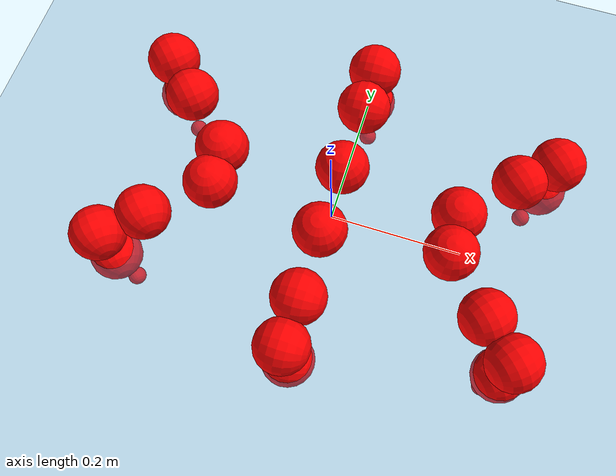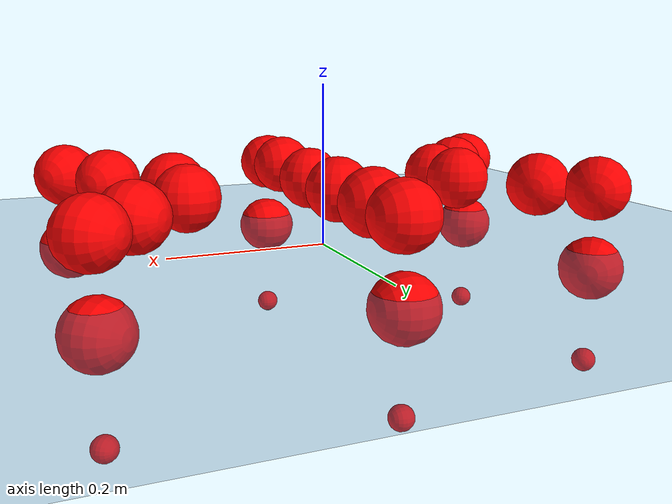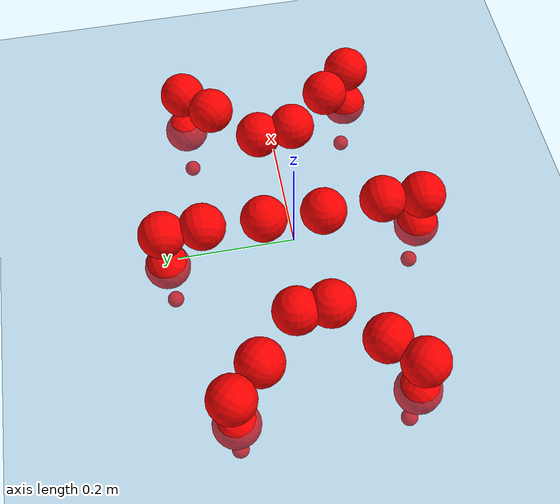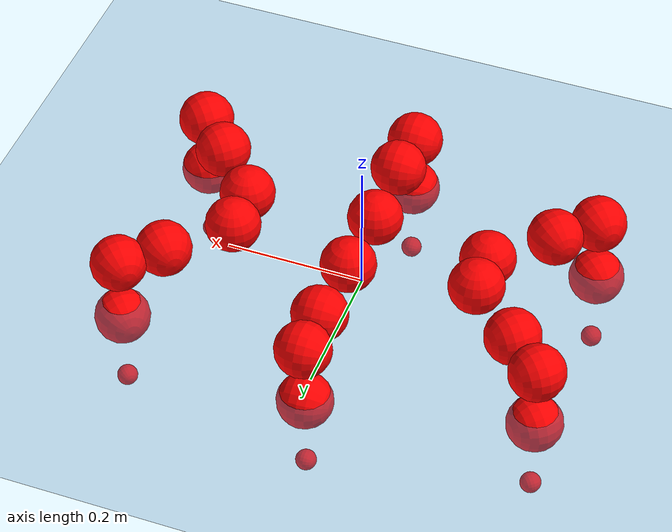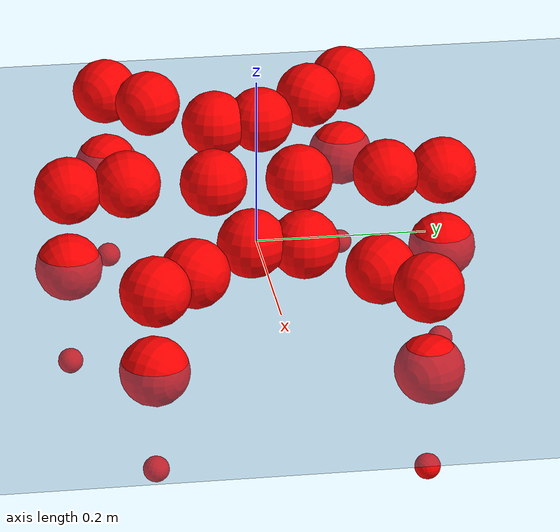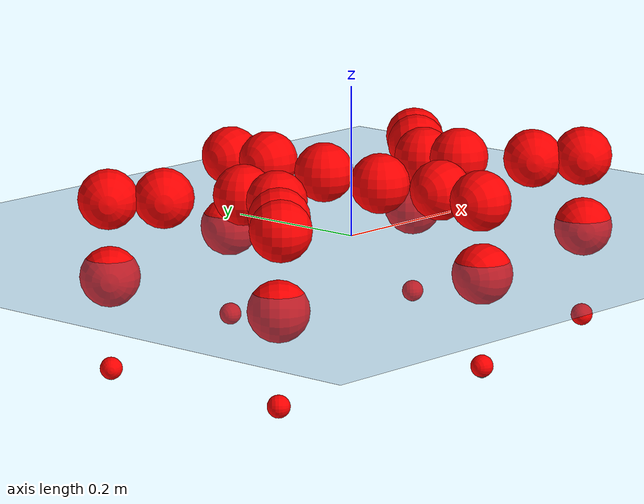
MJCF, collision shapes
<mujoco model="Golem">
  <compiler angle="radian" assetdir="assets" balanceinertia="true" inertiafromgeom="false"/>

  <option timestep="0.005" density="1.2" viscosity="2e-05"/>

  <size nkey="1"/>

  <visual>
    <quality shadowsize="8192"/>
    <map shadowclip="0.5"/>
  </visual>

  <default>
    <default class="/">
      <joint armature="0.01" damping="0.01" frictionloss="0.01"/>
      <geom contype="0" conaffinity="0" group="1" solref="-1000 -80"/>
      <site size="0.01 0.005 0.005" group="5"/>
      <general forcelimited="true" biastype="affine" gainprm="25" biasprm="0 -25 -0.5"/>
      <default class="visual">
        <geom type="mesh" group="2"/>
      </default>
      <default class="collision">
        <geom group="3"/>
      </default>
      <default class="foot">
        <geom size="0.01 0 0" condim="6" group="4" priority="1" solimp="0.015 1 0.01"/>
      </default>
      <default class="reward_collision_sphere">
        <geom group="5" rgba="1 0 0 1"/>
      </default>
    </default>
  </default>

  <asset>
    <texture type="skybox" colorspace="auto" name="//unnamed_texture_0" builtin="gradient" rgb1="0.95 0.95 0.95" rgb2="0.95 0.95 0.95" width="100" height="600"/>
    <texture type="2d" colorspace="auto" name="texplane" builtin="checker" rgb1="0.345 0.575 0.748" rgb2="0.345 0.575 0.748" markrgb="1 1 1" width="512" height="512"/>
    <material name="MatPlane" class="/" texture="texplane" texuniform="true" texrepeat="2 2" specular="0.9"/>
    <mesh name="body" class="/" file="body.stl" scale="0.001 0.001 0.001"/>
    <mesh name="coxa" class="/" file="coxa.stl" scale="0.001 0.001 0.001"/>
    <mesh name="femur" class="/" file="femur.stl" scale="0.001 0.001 0.001"/>
    <mesh name="tibia" class="/" file="tibia.stl" scale="0.001 0.001 0.001"/>
    <mesh name="tarsus" class="/" file="tarsus.stl" scale="0.001 0.001 0.001"/>
  </asset>

  <worldbody>
    <geom name="floor" class="/" size="100 100 0.125" type="plane" group="0" material="MatPlane"/>
    <light name="toplight_shadow" class="/" pos="0 0 5" dir="0.0990148 0.0990148 -0.990148" type="directional" ambient="0.04 0.04 0.04" diffuse="0.55 0.55 0.55" specular="0.12 0.12 0.12"/>
    <light name="toplight_fill" class="/" pos="0 0 5" dir="0.0990148 0.0990148 -0.990148" type="directional" castshadow="false" ambient="0.04 0.04 0.04" diffuse="0.3 0.3 0.3" specular="0.08 0.08 0.08"/>
    <body name="trunk" pos="0.00232082 -0.000250449 0.00224008" quat="1 0.000571998 -0.000743744 0.000216085">
      <inertial pos="0.000278724 -0.000672971 0.000256564" quat="0.999938 0.00957585 -0.00538664 0.00196062" mass="3.53259" diaginertia="0.0180832 0.0010105 0.0241008"/>
      <joint name="//unnamed_joint_0" type="free"/>
      <geom name="//unnamed_geom_1" class="/" pos="0 0 0.0761059" quat="1 0 0 0" type="mesh" rgba="0.9 0.9 0.9 1" mesh="body"/>
      <site name="imu" class="/" pos="0.136773 0.000953297 0.113395" size="0.00985781"/>
      <camera name="track" class="/" pos="0 -1.2737 0" quat="0.707107 0.707107 0 0" mode="trackcom"/>
      <camera name="ego_camera" class="/" pos="0.147074 0 0.118916" quat="-0.5 -0.5 0.5 0.5"/>
      <body name="coxa_RR" pos="-0.199171 -0.0505381 0.0763035" quat="0.382873 -0.00139032 0.00131037 -0.923799">
        <inertial pos="0.00317625 -0.000958431 0.00145528" quat="0.999981 -0.0013736 0.00604413 -0.000168798" mass="0.197589" diaginertia="0.018684 0.00106987 0.0248555"/>
        <joint name="coxa_joint_RR" class="/" pos="0 0 0" axis="0.00354165 -0.000214276 -0.999994" range="-3.1779 3.18642" armature="0.00869523" damping="0.00513394" frictionloss="0.00922853"/>
        <geom name="//unnamed_geom_2" class="/" type="mesh" rgba="0.2 0.2 0.2 1" mesh="coxa"/>
        <geom name="//unnamed_geom_3" class="reward_collision_sphere" size="0.0394313" pos="-0.0339402 0 0"/>
        <body name="femur_RR" pos="0.0694186 -0.000906864 -0.000340118" quat="0.499739 -0.500015 0.500075 0.50017">
          <inertial pos="-0.0010872 -0.00227798 -0.00214719" quat="1 9.31291e-06 9.23204e-06 -1.04416e-05" mass="0.192996" diaginertia="0.0184298 0.00104921 0.0247154"/>
          <joint name="femur_joint_RR" class="/" pos="0 0 0" axis="-0.00438883 0.00451973 -0.99998" range="-3.08709 3.15756" armature="0.00902121" damping="0.0148058" frictionloss="0.00857227"/>
          <geom name="//unnamed_geom_4" class="/" type="mesh" rgba="0.9 0.9 0.9 1" mesh="femur"/>
          <geom name="//unnamed_geom_5" class="reward_collision_sphere" size="0.0394313"/>
          <body name="tibia_RR" pos="0.000914081 -0.0672616 -0.000881766" quat="-3.81654e-05 1 -5.25446e-05 -0.000154131">
            <inertial pos="-0.00207364 -0.00145026 0.00221632" quat="0.999975 -0.00695595 -0.000180915 0.00122458" mass="0.184903" diaginertia="0.0183555 0.00101997 0.0239542"/>
            <joint name="tibia_joint_RR" class="/" pos="0 0 0" axis="-0.00429649 0.00143314 0.99999" range="-3.13967 3.13567" armature="0.00999581" damping="0.0173949" frictionloss="0.0107612"/>
            <geom name="//unnamed_geom_6" class="/" type="mesh" rgba="0.2 0.2 0.2 1" mesh="tibia"/>
            <geom name="//unnamed_geom_7" class="reward_collision_sphere" size="0.0394313"/>
            <body name="tarsus_RR" pos="0.101008 0.00188308 0.00277421" quat="1 0.000535355 0.000697139 0.000175527">
              <inertial pos="0.0708323 0.00305851 0.00235113" quat="0.510242 0.498697 0.497198 0.493709" mass="0.199856" diaginertia="0.0184281 0.00105457 0.0240669"/>
              <joint name="tarsus_joint_RR" class="/" pos="0 0 0" axis="0.00164353 0.00676844 0.999976" range="-3.13646 3.11225" armature="0.00945824" damping="0.0105641" frictionloss="0.00877425"/>
              <geom name="//unnamed_geom_8" class="/" type="mesh" rgba="0.9 0.9 0.9 1" mesh="tarsus"/>
              <geom name="foot_1" class="foot" size="0.009134" pos="0.12671 0 0" quat="0 -0.707107 0 0.707107"/>
              <geom name="//unnamed_geom_10" class="reward_collision_sphere" size="0.0394313"/>
              <geom name="//unnamed_geom_11" class="reward_collision_sphere" size="0.0147867" pos="0.121619 0 0"/>
              <site name="foot_1" class="foot" pos="0.12671 0 0" quat="0 -0.707107 0 0.707107" size="0.00985781"/>
            </body>
          </body>
        </body>
      </body>
      <body name="coxa_RM" pos="-0.00312156 -0.0839759 0.0755432" quat="0.706933 -0.000477866 -0.000117724 -0.70728">
        <inertial pos="-0.000646078 -0.00102952 0.00391962" quat="0.999913 -0.00401442 0.0105874 0.00671847" mass="0.19382" diaginertia="0.0185853 0.00106748 0.0244952"/>
        <joint name="coxa_joint_RM" class="/" pos="0 0 0" axis="0.00241398 -0.00220283 -0.999995" range="-3.13422 3.09722" armature="0.00894984" damping="0.0166501" frictionloss="0.010314"/>
        <geom name="//unnamed_geom_12" class="/" type="mesh" rgba="0.2 0.2 0.2 1" mesh="coxa"/>
        <geom name="//unnamed_geom_13" class="reward_collision_sphere" size="0.0394313" pos="-0.0339402 0 0"/>
        <body name="femur_RM" pos="0.0671992 0.00238816 0.00505008" quat="0.501471 -0.499253 0.500119 0.499153">
          <inertial pos="-0.00251223 -0.00095934 -0.000233923" quat="0.999916 -0.00474897 -0.00849607 -0.0086157" mass="0.197159" diaginertia="0.0180944 0.00101702 0.0236013"/>
          <joint name="femur_joint_RM" class="/" pos="0 0 0" axis="0.00131142 -0.0128497 -0.999917" range="-3.12124 3.1196" armature="0.00832527" damping="0.00368849" frictionloss="0.00975185"/>
          <geom name="//unnamed_geom_14" class="/" type="mesh" rgba="0.9 0.9 0.9 1" mesh="femur"/>
          <geom name="//unnamed_geom_15" class="reward_collision_sphere" size="0.0394313"/>
          <body name="tibia_RM" pos="0.00456561 -0.0684338 -0.000804419" quat="-0.000416214 1 -0.000118512 -5.66184e-05">
            <inertial pos="-0.00246119 0.000416269 0.0018724" quat="0.999993 0.000284574 0.00251176 0.00263137" mass="0.198508" diaginertia="0.019329 0.00105883 0.0235169"/>
            <joint name="tibia_joint_RM" class="/" pos="0 0 0" axis="-0.0112724 -0.00203066 0.999934" range="-3.12558 3.15978" armature="0.0102317" damping="0" frictionloss="0.00860768"/>
            <geom name="//unnamed_geom_16" class="/" type="mesh" rgba="0.2 0.2 0.2 1" mesh="tibia"/>
            <geom name="//unnamed_geom_17" class="reward_collision_sphere" size="0.0394313"/>
            <body name="tarsus_RM" pos="0.0957045 0.00107956 -0.00292383" quat="0.999999 -0.000244203 -0.000681003 0.000875611">
              <inertial pos="0.065516 0.000258368 -0.00195163" quat="0.499982 0.500003 0.500015 0.5" mass="0.191493" diaginertia="0.0179063 0.00104418 0.0229611"/>
              <joint name="tarsus_joint_RM" class="/" pos="0 0 0" axis="0.00191 0.00964883 0.999952" stiffness="0.0154993" range="-3.11979 3.05617" armature="0.00962084" damping="0.0216504" frictionloss="0.00867853"/>
              <geom name="//unnamed_geom_18" class="/" type="mesh" rgba="0.9 0.9 0.9 1" mesh="tarsus"/>
              <geom name="foot_2" class="foot" size="0.0104284" pos="0.12671 0 0" quat="0 -0.707107 0 0.707107"/>
              <geom name="//unnamed_geom_20" class="reward_collision_sphere" size="0.0394313"/>
              <geom name="//unnamed_geom_21" class="reward_collision_sphere" size="0.0147867" pos="0.121619 0 0"/>
              <site name="foot_2" class="foot" pos="0.12671 0 0" quat="0 -0.707107 0 0.707107" size="0.00985781"/>
            </body>
          </body>
        </body>
      </body>
      <body name="coxa_RF" pos="0.20377 -0.0543878 0.0798386" quat="0.924103 -0.000380032 0.000573949 -0.382144">
        <inertial pos="-0.00199376 0.0016716 -0.00242752" quat="0.999917 -0.00923426 0.00421154 0.00791312" mass="0.184716" diaginertia="0.0180535 0.00102178 0.0237237"/>
        <joint name="coxa_joint_RF" class="/" pos="0 0 0" axis="-0.00385166 0.00693653 -0.999969" range="-3.1308 3.09277" armature="0.0101939" damping="0.00348266" frictionloss="0.00870275"/>
        <geom name="//unnamed_geom_22" class="/" type="mesh" rgba="0.2 0.2 0.2 1" mesh="coxa"/>
        <geom name="//unnamed_geom_23" class="reward_collision_sphere" size="0.0394313" pos="-0.0339402 0 0"/>
        <body name="femur_RF" pos="0.0646126 -0.00437955 -0.00153873" quat="0.500142 -0.498269 0.50048 0.501104">
          <inertial pos="0.00198122 -0.00155022 -0.00208506" quat="0.999978 0.00156794 -0.00304158 -0.00567759" mass="0.18646" diaginertia="0.0180171 0.0010443 0.022953"/>
          <joint name="femur_joint_RF" class="/" pos="0 0 0" axis="-0.00892819 -0.00959717 -0.999914" stiffness="0.00357866" range="-3.10402 3.16743" armature="0.00895496" damping="0.0149665" frictionloss="0.0098832"/>
          <geom name="//unnamed_geom_24" class="/" type="mesh" rgba="0.9 0.9 0.9 1" mesh="femur"/>
          <geom name="//unnamed_geom_25" class="reward_collision_sphere" size="0.0394313"/>
          <body name="tibia_RF" pos="-0.00315182 -0.067305 -0.00230142" quat="-0.00019259 0.999999 -0.000474575 -0.0010499">
            <inertial pos="-0.00125334 0.000569332 -0.000822574" quat="0.999938 -0.00945618 -0.00154801 0.00573089" mass="0.205898" diaginertia="0.0195892 0.00109523 0.0242377"/>
            <joint name="tibia_joint_RF" class="/" pos="0 0 0" axis="-6.08428e-05 0.000127553 1" stiffness="0.0209214" range="-3.12354 3.15673" armature="0.0101012" damping="0.0352905" frictionloss="0.00994548"/>
            <geom name="//unnamed_geom_26" class="/" type="mesh" rgba="0.2 0.2 0.2 1" mesh="tibia"/>
            <geom name="//unnamed_geom_27" class="reward_collision_sphere" size="0.0394313"/>
            <body name="tarsus_RF" pos="0.0965497 0.00174933 0.000818319" quat="1 -0.000125343 7.87745e-05 0.000104668">
              <inertial pos="0.0697675 0.000484438 0.00245756" quat="0.500349 0.500546 0.500395 0.498707" mass="0.187292" diaginertia="0.0192052 0.00103169 0.0239923"/>
              <joint name="tarsus_joint_RF" class="/" pos="0 0 0" axis="0.00994788 -0.0105327 0.999895" range="-3.12969 3.08804" armature="0.0110099" damping="0" frictionloss="0.00888836"/>
              <geom name="//unnamed_geom_28" class="/" type="mesh" rgba="0.9 0.9 0.9 1" mesh="tarsus"/>
              <geom name="foot_3" class="foot" size="0.00980618" pos="0.12671 0 0" quat="0 -0.707107 0 0.707107"/>
              <geom name="//unnamed_geom_30" class="reward_collision_sphere" size="0.0394313"/>
              <geom name="//unnamed_geom_31" class="reward_collision_sphere" size="0.0147867" pos="0.121619 0 0"/>
              <site name="foot_3" class="foot" pos="0.12671 0 0" quat="0 -0.707107 0 0.707107" size="0.00985781"/>
            </body>
          </body>
        </body>
      </body>
      <body name="coxa_LR" pos="-0.201563 0.0531976 0.0770006" quat="0.38266 -0.000100258 -2.00132e-05 0.923889">
        <inertial pos="0.000946168 -0.00268007 0.000236282" quat="0.999999 -0.000281382 0.000924025 -0.000995301" mass="0.193537" diaginertia="0.0192175 0.00108258 0.0241511"/>
        <joint name="coxa_joint_LR" class="/" pos="0 0 0" axis="-0.00119157 -0.00366442 -0.999993" stiffness="0.00197719" range="-3.12371 3.09696" armature="0.011076" damping="0.0053174" frictionloss="0.0097196"/>
        <geom name="//unnamed_geom_32" class="/" type="mesh" rgba="0.2 0.2 0.2 1" mesh="coxa"/>
        <geom name="//unnamed_geom_33" class="reward_collision_sphere" size="0.0394313" pos="-0.0339402 0 0"/>
        <body name="femur_LR" pos="0.0682441 0.00298465 -0.00259203" quat="0.500116 -0.499996 0.499917 0.499971">
          <inertial pos="-0.000852999 -0.00203803 0.00320052" quat="0.999964 0.0065406 -0.000501669 0.00531767" mass="0.199969" diaginertia="0.0189893 0.00107507 0.0245135"/>
          <joint name="femur_joint_LR" class="/" pos="0 0 0" axis="0.00548153 -0.0162847 0.999852" stiffness="0.0042299" range="-3.15788 3.13889" armature="0.0103528" damping="0.00359925" frictionloss="0.00892812"/>
          <geom name="//unnamed_geom_34" class="/" type="mesh" rgba="0.9 0.9 0.9 1" mesh="femur"/>
          <geom name="//unnamed_geom_35" class="reward_collision_sphere" size="0.0394313"/>
          <body name="tibia_LR" pos="0.000558743 -0.0710769 -0.000485397" quat="0.000193064 1 6.62853e-06 -0.000506541">
            <inertial pos="-0.00152506 -0.00141105 -0.000343123" quat="0.999917 -0.010774 0.00693628 0.000930135" mass="0.195721" diaginertia="0.0193187 0.00107535 0.0238275"/>
            <joint name="tibia_joint_LR" class="/" pos="0 0 0" axis="0.00873553 0.018789 -0.999785" range="-3.15447 3.22333" armature="0.00806704" damping="0.0338733" frictionloss="0.0101213"/>
            <geom name="//unnamed_geom_36" class="/" type="mesh" rgba="0.2 0.2 0.2 1" mesh="tibia"/>
            <geom name="//unnamed_geom_37" class="reward_collision_sphere" size="0.0394313"/>
            <body name="tarsus_LR" pos="0.101015 -0.000995471 -0.00242192" quat="0.999999 0.00111707 0.000585599 0.000339049">
              <inertial pos="0.06466 -0.0018166 0.00432045" quat="0.499938 0.49992 0.499948 0.500193" mass="0.194348" diaginertia="0.0186943 0.00101848 0.0244759"/>
              <joint name="tarsus_joint_LR" class="/" pos="0 0 0" axis="-0.00174499 0.00515188 -0.999985" range="-3.11883 3.11117" armature="0.00984442" damping="0.000828395" frictionloss="0.0100093"/>
              <geom name="//unnamed_geom_38" class="/" type="mesh" rgba="0.9 0.9 0.9 1" mesh="tarsus"/>
              <geom name="foot_4" class="foot" size="0.0100959" pos="0.12671 0 0" quat="0.707107 0 -0.707107 0"/>
              <geom name="//unnamed_geom_40" class="reward_collision_sphere" size="0.0394313"/>
              <geom name="//unnamed_geom_41" class="reward_collision_sphere" size="0.0147867" pos="0.121619 0 0"/>
              <site name="foot_4" class="foot" pos="0.12671 0 0" quat="0.707107 0 -0.707107 0" size="0.00985781"/>
            </body>
          </body>
        </body>
      </body>
      <body name="coxa_LM" pos="-0.000698394 0.0841378 0.0763122" quat="0.706698 6.65739e-05 -0.00129143 0.707515">
        <inertial pos="0.000210983 0.00197661 -0.00366775" quat="0.999955 0.00883463 0.00211082 -0.0026585" mass="0.188105" diaginertia="0.0173833 0.00101215 0.0230903"/>
        <joint name="coxa_joint_LM" class="/" pos="0 0 0" axis="-0.00123335 -0.00445699 -0.999989" range="-3.15251 3.08924" armature="0.0113891" damping="0.0120922" frictionloss="0.0100757"/>
        <geom name="//unnamed_geom_42" class="/" type="mesh" rgba="0.2 0.2 0.2 1" mesh="coxa"/>
        <geom name="//unnamed_geom_43" class="reward_collision_sphere" size="0.0394313" pos="-0.0339402 0 0"/>
        <body name="femur_LM" pos="0.0684315 -0.00250987 0.00141949" quat="0.499898 -0.500041 0.500118 0.499943">
          <inertial pos="0.00315005 0.00107611 -0.000876927" quat="0.999996 -0.00133549 0.00225275 0.00114712" mass="0.20255" diaginertia="0.0184484 0.00109718 0.0252692"/>
          <joint name="femur_joint_LM" class="/" pos="0 0 0" axis="-0.010128 0.00250945 0.999946" range="-3.14569 3.13953" armature="0.00883316" damping="0" frictionloss="0.00964128"/>
          <geom name="//unnamed_geom_44" class="/" type="mesh" rgba="0.9 0.9 0.9 1" mesh="femur"/>
          <geom name="//unnamed_geom_45" class="reward_collision_sphere" size="0.0394313"/>
          <body name="tibia_LM" pos="0.00225265 -0.0669801 0.00198615" quat="-0.00103222 0.999999 0.000840251 -9.94063e-05">
            <inertial pos="0.00276681 -0.000153039 8.82967e-05" quat="0.999997 0.000320938 -0.00111999 0.00195448" mass="0.194186" diaginertia="0.0186893 0.0010123 0.0235619"/>
            <joint name="tibia_joint_LM" class="/" pos="0 0 0" axis="0.0144904 -0.00278413 -0.999891" range="-3.10683 3.10716" armature="0.0112457" damping="0" frictionloss="0.010906"/>
            <geom name="//unnamed_geom_46" class="/" type="mesh" rgba="0.2 0.2 0.2 1" mesh="tibia"/>
            <geom name="//unnamed_geom_47" class="reward_collision_sphere" size="0.0394313"/>
            <body name="tarsus_LM" pos="0.0974519 0.00133985 -0.00214102" quat="1 -9.42265e-08 -3.00211e-06 -7.22487e-06">
              <inertial pos="0.0653318 -0.00232295 -0.00251122" quat="0.499892 0.499935 0.499541 0.500632" mass="0.192855" diaginertia="0.0182042 0.0010317 0.0236109"/>
              <joint name="tarsus_joint_LM" class="/" pos="0 0 0" axis="0.0034531 0.00553772 -0.999979" stiffness="0.00940015" range="-3.15238 3.13937" armature="0.00954186" damping="0.0225739" frictionloss="0.00855649"/>
              <geom name="//unnamed_geom_48" class="/" type="mesh" rgba="0.9 0.9 0.9 1" mesh="tarsus"/>
              <geom name="foot_5" class="foot" size="0.00968781" pos="0.12671 0 0" quat="0.707107 0 -0.707107 0"/>
              <geom name="//unnamed_geom_50" class="reward_collision_sphere" size="0.0394313"/>
              <geom name="//unnamed_geom_51" class="reward_collision_sphere" size="0.0147867" pos="0.121619 0 0"/>
              <site name="foot_5" class="foot" pos="0.12671 0 0" quat="0.707107 0 -0.707107 0" size="0.00985781"/>
            </body>
          </body>
        </body>
      </body>
      <body name="coxa_LF" pos="0.201164 0.0538756 0.0738181" quat="0.92405 -0.00109967 -0.000733985 0.382269">
        <inertial pos="-0.00020045 -0.000411744 0.00263062" quat="0.999932 0.00151773 -0.00302199 0.011188" mass="0.191606" diaginertia="0.0175738 0.00108008 0.0237804"/>
        <joint name="coxa_joint_LF" class="/" pos="0 0 0" axis="-0.00716778 -0.00303596 -0.99997" range="-3.10004 3.17037" armature="0.00913316" damping="0.00183574" frictionloss="0.00938791"/>
        <geom name="//unnamed_geom_52" class="/" type="mesh" rgba="0.2 0.2 0.2 1" mesh="coxa"/>
        <geom name="//unnamed_geom_53" class="reward_collision_sphere" size="0.0394313" pos="-0.0339402 0 0"/>
        <body name="femur_LF" pos="0.069586 0.00199281 -0.0025424" quat="0.500298 -0.500599 0.499916 0.499186">
          <inertial pos="0.000875951 0.000163149 0.000788838" quat="0.999934 -0.00320527 0.00196235 0.0108786" mass="0.185632" diaginertia="0.0187643 0.00106065 0.0238192"/>
          <joint name="femur_joint_LF" class="/" pos="0 0 0" axis="-0.00231909 -0.0102664 0.999945" stiffness="0.00392554" range="-3.10389 3.15261" armature="0.00989598" damping="0.00991895" frictionloss="0.00978563"/>
          <geom name="//unnamed_geom_54" class="/" type="mesh" rgba="0.9 0.9 0.9 1" mesh="femur"/>
          <geom name="//unnamed_geom_55" class="reward_collision_sphere" size="0.0394313"/>
          <body name="tibia_LF" pos="0.00336885 -0.0662003 -0.00203545" quat="6.60324e-05 1 -3.20863e-05 8.0083e-06">
            <inertial pos="0.00074318 -0.000190852 -0.00173573" quat="0.999791 -0.0194497 0.00600049 0.00203089" mass="0.185314" diaginertia="0.0184428 0.00107213 0.0230843"/>
            <joint name="tibia_joint_LF" class="/" pos="0 0 0" axis="0.0036508 -0.0109898 -0.999933" stiffness="0.0201452" range="-3.13134 3.18061" armature="0.00967767" damping="0.0205671" frictionloss="0.0087524"/>
            <geom name="//unnamed_geom_56" class="/" type="mesh" rgba="0.2 0.2 0.2 1" mesh="tibia"/>
            <geom name="//unnamed_geom_57" class="reward_collision_sphere" size="0.0394313"/>
            <body name="tarsus_LF" pos="0.100353 0.000964631 -0.00255646" quat="1 -0.000737392 -0.000178437 0.000336585">
              <inertial pos="0.0667477 -0.00307501 -0.000857314" quat="0.501894 0.491578 0.50931 0.497049" mass="0.201909" diaginertia="0.0193561 0.00108565 0.0244399"/>
              <joint name="tarsus_joint_LF" class="/" pos="0 0 0" axis="0.0125804 0.00263179 -0.999917" stiffness="0.00310593" range="-3.1922 3.17289" armature="0.00892698" damping="0" frictionloss="0.00978013"/>
              <geom name="//unnamed_geom_58" class="/" type="mesh" rgba="0.9 0.9 0.9 1" mesh="tarsus"/>
              <geom name="foot_6" class="foot" size="0.010029" pos="0.12671 0 0" quat="0.707107 0 -0.707107 0"/>
              <geom name="//unnamed_geom_60" class="reward_collision_sphere" size="0.0394313"/>
              <geom name="//unnamed_geom_61" class="reward_collision_sphere" size="0.0147867" pos="0.121619 0 0"/>
              <site name="foot_6" class="foot" pos="0.12671 0 0" quat="0.707107 0 -0.707107 0" size="0.00985781"/>
            </body>
          </body>
        </body>
      </body>
    </body>
  </worldbody>

  <contact>
    <pair class="/" geom1="floor" geom2="foot_1" name="//unnamed_contact_0"/>
    <pair class="/" geom1="floor" geom2="foot_2" name="//unnamed_contact_1"/>
    <pair class="/" geom1="floor" geom2="foot_3" name="//unnamed_contact_2"/>
    <pair class="/" geom1="floor" geom2="foot_4" name="//unnamed_contact_3"/>
    <pair class="/" geom1="floor" geom2="foot_5" name="//unnamed_contact_4"/>
    <pair class="/" geom1="floor" geom2="foot_6" name="//unnamed_contact_5"/>
  </contact>

  <actuator>
    <general name="coxa_joint_RR" class="/" joint="coxa_joint_RR" forcerange="-6.98225 6.98225" gainprm="23.8902" biasprm="0 -23.8902 -0.471538"/>
    <general name="femur_joint_RR" class="/" joint="femur_joint_RR" forcerange="-7.44584 7.44584" gainprm="23.8902" biasprm="0 -23.8902 -0.471538"/>
    <general name="tibia_joint_RR" class="/" joint="tibia_joint_RR" forcerange="-7.55324 7.55324" gainprm="23.8902" biasprm="0 -23.8902 -0.471538"/>
    <general name="tarsus_joint_RR" class="/" joint="tarsus_joint_RR" forcerange="-7.83604 7.83604" gainprm="23.8902" biasprm="0 -23.8902 -0.471538"/>
    <general name="coxa_joint_RM" class="/" joint="coxa_joint_RM" forcerange="-6.0639 6.0639" gainprm="23.8902" biasprm="0 -23.8902 -0.471538"/>
    <general name="femur_joint_RM" class="/" joint="femur_joint_RM" forcerange="-7.06564 7.06564" gainprm="23.8902" biasprm="0 -23.8902 -0.471538"/>
    <general name="tibia_joint_RM" class="/" joint="tibia_joint_RM" forcerange="-7.81163 7.81163" gainprm="23.8902" biasprm="0 -23.8902 -0.471538"/>
    <general name="tarsus_joint_RM" class="/" joint="tarsus_joint_RM" forcerange="-7.56749 7.56749" gainprm="23.8902" biasprm="0 -23.8902 -0.471538"/>
    <general name="coxa_joint_RF" class="/" joint="coxa_joint_RF" forcerange="-6.99077 6.99077" gainprm="23.8902" biasprm="0 -23.8902 -0.471538"/>
    <general name="femur_joint_RF" class="/" joint="femur_joint_RF" forcerange="-7.25768 7.25768" gainprm="23.8902" biasprm="0 -23.8902 -0.471538"/>
    <general name="tibia_joint_RF" class="/" joint="tibia_joint_RF" forcerange="-7.33822 7.33822" gainprm="23.8902" biasprm="0 -23.8902 -0.471538"/>
    <general name="tarsus_joint_RF" class="/" joint="tarsus_joint_RF" forcerange="-7.21398 7.21398" gainprm="23.8902" biasprm="0 -23.8902 -0.471538"/>
    <general name="coxa_joint_LR" class="/" joint="coxa_joint_LR" forcerange="-6.59993 6.59993" gainprm="23.8902" biasprm="0 -23.8902 -0.471538"/>
    <general name="femur_joint_LR" class="/" joint="femur_joint_LR" forcerange="-7.26383 7.26383" gainprm="23.8902" biasprm="0 -23.8902 -0.471538"/>
    <general name="tibia_joint_LR" class="/" joint="tibia_joint_LR" forcerange="-7.19918 7.19918" gainprm="23.8902" biasprm="0 -23.8902 -0.471538"/>
    <general name="tarsus_joint_LR" class="/" joint="tarsus_joint_LR" forcerange="-6.44795 6.44795" gainprm="23.8902" biasprm="0 -23.8902 -0.471538"/>
    <general name="coxa_joint_LM" class="/" joint="coxa_joint_LM" forcerange="-7.49847 7.49847" gainprm="23.8902" biasprm="0 -23.8902 -0.471538"/>
    <general name="femur_joint_LM" class="/" joint="femur_joint_LM" forcerange="-7.90095 7.90095" gainprm="23.8902" biasprm="0 -23.8902 -0.471538"/>
    <general name="tibia_joint_LM" class="/" joint="tibia_joint_LM" forcerange="-6.69199 6.69199" gainprm="23.8902" biasprm="0 -23.8902 -0.471538"/>
    <general name="tarsus_joint_LM" class="/" joint="tarsus_joint_LM" forcerange="-6.15065 6.15065" gainprm="23.8902" biasprm="0 -23.8902 -0.471538"/>
    <general name="coxa_joint_LF" class="/" joint="coxa_joint_LF" forcerange="-7.14794 7.14794" gainprm="23.8902" biasprm="0 -23.8902 -0.471538"/>
    <general name="femur_joint_LF" class="/" joint="femur_joint_LF" forcerange="-7.09232 7.09232" gainprm="23.8902" biasprm="0 -23.8902 -0.471538"/>
    <general name="tibia_joint_LF" class="/" joint="tibia_joint_LF" forcerange="-6.49853 6.49853" gainprm="23.8902" biasprm="0 -23.8902 -0.471538"/>
    <general name="tarsus_joint_LF" class="/" joint="tarsus_joint_LF" forcerange="-6.66666 6.66666" gainprm="23.8902" biasprm="0 -23.8902 -0.471538"/>
  </actuator>

  <sensor>
    <gyro site="imu" name="imu_angular_velocity"/>
    <velocimeter site="imu" name="imu_linear_velocity"/>
    <framelinvel objtype="site" objname="foot_1" name="foot_1_global_linear_velocity"/>
    <framelinvel objtype="site" objname="foot_2" name="foot_2_global_linear_velocity"/>
    <framelinvel objtype="site" objname="foot_3" name="foot_3_global_linear_velocity"/>
    <framelinvel objtype="site" objname="foot_4" name="foot_4_global_linear_velocity"/>
    <framelinvel objtype="site" objname="foot_5" name="foot_5_global_linear_velocity"/>
    <framelinvel objtype="site" objname="foot_6" name="foot_6_global_linear_velocity"/>
  </sensor>

  <keyframe>
    <key name="home" qpos="0 0 0.1457 1 0 0 0 0 0 0 0 0 0 0 0 0 0 0 0 0 0 0 0 0 0 0 0 0 0 0 0"/>
  </keyframe>
</mujoco>
